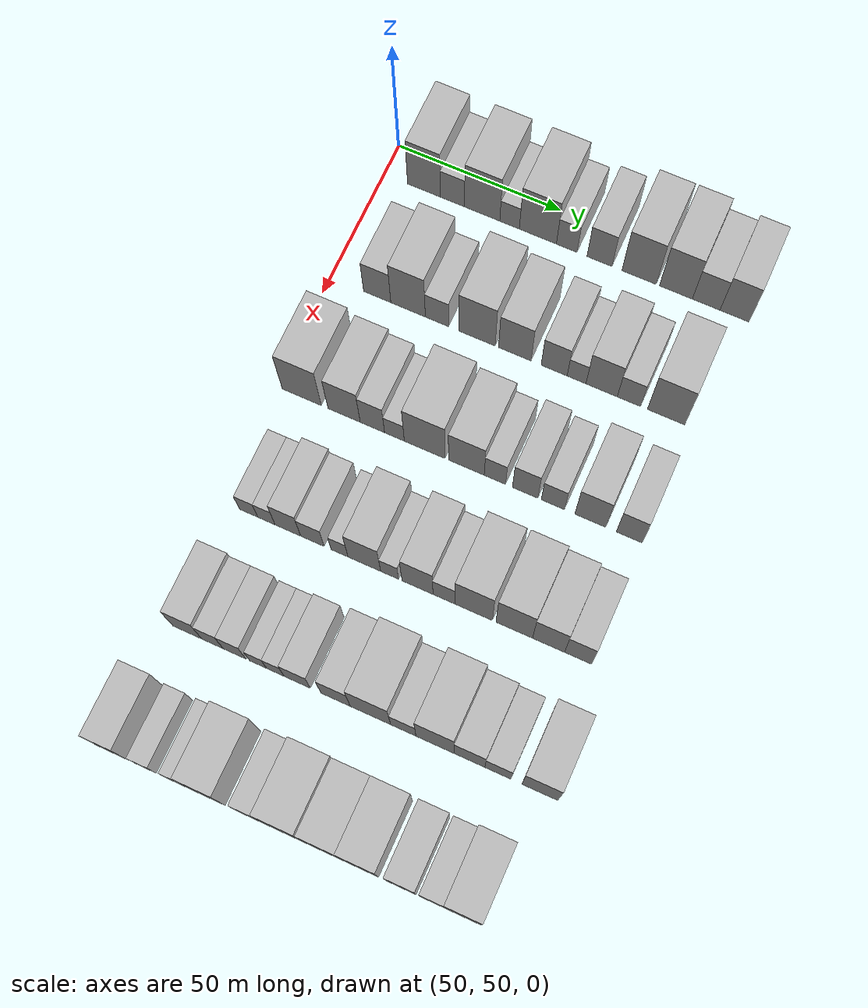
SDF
<sdf version="1.6">
 <world name="default">
  <model name="building_68">
   <static>1</static>
   <pose>50.0000 62.4243 0 0.000000 0.000000 0.000000</pose>
   <link name="link">
    <pose>0 0 12.00 0 0 0</pose>
    <collision name="collision"><geometry><box><size>20.0000 10.1857 24.0000</size></box></geometry></collision>
    <visual name="visual">
     <cast_shadows>0</cast_shadows>
     <geometry><box><size>20.0000 10.1857 24.0000</size></box></geometry>
     <material>
      <script>
       <uri>model://HANNAS_wall/materials/scripts</uri>
       <uri>model://HANNAS_wall/materials/textures</uri>
       <name>vrc/HANNAS_wall</name>
      </script>
     </material>
    </visual>
   </link>
  </model>
  <model name="building_69">
   <static>1</static>
   <pose>50.0000 71.2146 0 0.000000 0.000000 0.000000</pose>
   <link name="link">
    <pose>0 0 7.50 0 0 0</pose>
    <collision name="collision"><geometry><box><size>20.0000 7.3948 15.0000</size></box></geometry></collision>
    <visual name="visual">
     <cast_shadows>0</cast_shadows>
     <geometry><box><size>20.0000 7.3948 15.0000</size></box></geometry>
     <material>
      <script>
       <uri>model://HANNAS_wall/materials/scripts</uri>
       <uri>model://HANNAS_wall/materials/textures</uri>
       <name>vrc/HANNAS_wall</name>
      </script>
     </material>
    </visual>
   </link>
  </model>
  <model name="building_70">
   <static>1</static>
   <pose>50.0000 80.3502 0 0.000000 0.000000 0.000000</pose>
   <link name="link">
    <pose>0 0 12.00 0 0 0</pose>
    <collision name="collision"><geometry><box><size>20.0000 10.8765 24.0000</size></box></geometry></collision>
    <visual name="visual">
     <cast_shadows>0</cast_shadows>
     <geometry><box><size>20.0000 10.8765 24.0000</size></box></geometry>
     <material>
      <script>
       <uri>model://HANNAS_wall/materials/scripts</uri>
       <uri>model://HANNAS_wall/materials/textures</uri>
       <name>vrc/HANNAS_wall</name>
      </script>
     </material>
    </visual>
   </link>
  </model>
  <model name="building_71">
   <static>1</static>
   <pose>50.0000 88.7648 0 0.000000 0.000000 0.000000</pose>
   <link name="link">
    <pose>0 0 6.00 0 0 0</pose>
    <collision name="collision"><geometry><box><size>20.0000 5.9526 12.0000</size></box></geometry></collision>
    <visual name="visual">
     <cast_shadows>0</cast_shadows>
     <geometry><box><size>20.0000 5.9526 12.0000</size></box></geometry>
     <material>
      <script>
       <uri>model://HANNAS_wall/materials/scripts</uri>
       <uri>model://HANNAS_wall/materials/textures</uri>
       <name>vrc/HANNAS_wall</name>
      </script>
     </material>
    </visual>
   </link>
  </model>
  <model name="building_72">
   <static>1</static>
   <pose>50.0000 97.3793 0 0.000000 0.000000 0.000000</pose>
   <link name="link">
    <pose>0 0 12.00 0 0 0</pose>
    <collision name="collision"><geometry><box><size>20.0000 11.2766 24.0000</size></box></geometry></collision>
    <visual name="visual">
     <cast_shadows>0</cast_shadows>
     <geometry><box><size>20.0000 11.2766 24.0000</size></box></geometry>
     <material>
      <script>
       <uri>model://HANNAS_wall/materials/scripts</uri>
       <uri>model://HANNAS_wall/materials/textures</uri>
       <name>vrc/HANNAS_wall</name>
      </script>
     </material>
    </visual>
   </link>
  </model>
  <model name="building_73">
   <static>1</static>
   <pose>50.0000 106.1438 0 0.000000 0.000000 0.000000</pose>
   <link name="link">
    <pose>0 0 7.50 0 0 0</pose>
    <collision name="collision"><geometry><box><size>20.0000 6.2524 15.0000</size></box></geometry></collision>
    <visual name="visual">
     <cast_shadows>0</cast_shadows>
     <geometry><box><size>20.0000 6.2524 15.0000</size></box></geometry>
     <material>
      <script>
       <uri>model://HANNAS_wall/materials/scripts</uri>
       <uri>model://HANNAS_wall/materials/textures</uri>
       <name>vrc/HANNAS_wall</name>
      </script>
     </material>
    </visual>
   </link>
  </model>
  <model name="building_74">
   <static>1</static>
   <pose>50.0000 116.0277 0 0.000000 0.000000 0.000000</pose>
   <link name="link">
    <pose>0 0 9.00 0 0 0</pose>
    <collision name="collision"><geometry><box><size>20.0000 7.5154 18.0000</size></box></geometry></collision>
    <visual name="visual">
     <cast_shadows>0</cast_shadows>
     <geometry><box><size>20.0000 7.5154 18.0000</size></box></geometry>
     <material>
      <script>
       <uri>model://HANNAS_wall/materials/scripts</uri>
       <uri>model://HANNAS_wall/materials/textures</uri>
       <name>vrc/HANNAS_wall</name>
      </script>
     </material>
    </visual>
   </link>
  </model>
  <model name="building_75">
   <static>1</static>
   <pose>50.0000 127.8854 0 0.000000 0.000000 0.000000</pose>
   <link name="link">
    <pose>0 0 12.00 0 0 0</pose>
    <collision name="collision"><geometry><box><size>20.0000 10.2000 24.0000</size></box></geometry></collision>
    <visual name="visual">
     <cast_shadows>0</cast_shadows>
     <geometry><box><size>20.0000 10.2000 24.0000</size></box></geometry>
     <material>
      <script>
       <uri>model://HANNAS_wall/materials/scripts</uri>
       <uri>model://HANNAS_wall/materials/textures</uri>
       <name>vrc/HANNAS_wall</name>
      </script>
     </material>
    </visual>
   </link>
  </model>
  <model name="building_76">
   <static>1</static>
   <pose>50.0000 138.8652 0 0.000000 0.000000 0.000000</pose>
   <link name="link">
    <pose>0 0 12.00 0 0 0</pose>
    <collision name="collision"><geometry><box><size>20.0000 9.7596 24.0000</size></box></geometry></collision>
    <visual name="visual">
     <cast_shadows>0</cast_shadows>
     <geometry><box><size>20.0000 9.7596 24.0000</size></box></geometry>
     <material>
      <script>
       <uri>model://HANNAS_wall/materials/scripts</uri>
       <uri>model://HANNAS_wall/materials/textures</uri>
       <name>vrc/HANNAS_wall</name>
      </script>
     </material>
    </visual>
   </link>
  </model>
  <model name="building_77">
   <static>1</static>
   <pose>50.0000 147.8287 0 0.000000 0.000000 0.000000</pose>
   <link name="link">
    <pose>0 0 9.00 0 0 0</pose>
    <collision name="collision"><geometry><box><size>20.0000 8.1674 18.0000</size></box></geometry></collision>
    <visual name="visual">
     <cast_shadows>0</cast_shadows>
     <geometry><box><size>20.0000 8.1674 18.0000</size></box></geometry>
     <material>
      <script>
       <uri>model://HANNAS_wall/materials/scripts</uri>
       <uri>model://HANNAS_wall/materials/textures</uri>
       <name>vrc/HANNAS_wall</name>
      </script>
     </material>
    </visual>
   </link>
  </model>
  <model name="building_78">
   <static>1</static>
   <pose>50.0000 156.1607 0 0.000000 0.000000 0.000000</pose>
   <link name="link">
    <pose>0 0 10.50 0 0 0</pose>
    <collision name="collision"><geometry><box><size>20.0000 8.4967 21.0000</size></box></geometry></collision>
    <visual name="visual">
     <cast_shadows>0</cast_shadows>
     <geometry><box><size>20.0000 8.4967 21.0000</size></box></geometry>
     <material>
      <script>
       <uri>model://HANNAS_wall/materials/scripts</uri>
       <uri>model://HANNAS_wall/materials/textures</uri>
       <name>vrc/HANNAS_wall</name>
      </script>
     </material>
    </visual>
   </link>
  </model>
  <model name="building_197">
   <static>1</static>
   <pose>85.0000 64.2257 0 0.000000 0.000000 0.000000</pose>
   <link name="link">
    <pose>0 0 9.00 0 0 0</pose>
    <collision name="collision"><geometry><box><size>20.0000 8.2749 18.0000</size></box></geometry></collision>
    <visual name="visual">
     <cast_shadows>0</cast_shadows>
     <geometry><box><size>20.0000 8.2749 18.0000</size></box></geometry>
     <material>
      <script>
       <uri>model://HANNAS_wall/materials/scripts</uri>
       <uri>model://HANNAS_wall/materials/textures</uri>
       <name>vrc/HANNAS_wall</name>
      </script>
     </material>
    </visual>
   </link>
  </model>
  <model name="building_198">
   <static>1</static>
   <pose>85.0000 73.5810 0 0.000000 0.000000 0.000000</pose>
   <link name="link">
    <pose>0 0 12.00 0 0 0</pose>
    <collision name="collision"><geometry><box><size>20.0000 10.4357 24.0000</size></box></geometry></collision>
    <visual name="visual">
     <cast_shadows>0</cast_shadows>
     <geometry><box><size>20.0000 10.4357 24.0000</size></box></geometry>
     <material>
      <script>
       <uri>model://HANNAS_wall/materials/scripts</uri>
       <uri>model://HANNAS_wall/materials/textures</uri>
       <name>vrc/HANNAS_wall</name>
      </script>
     </material>
    </visual>
   </link>
  </model>
  <model name="building_199">
   <static>1</static>
   <pose>85.0000 82.2928 0 0.000000 0.000000 0.000000</pose>
   <link name="link">
    <pose>0 0 7.50 0 0 0</pose>
    <collision name="collision"><geometry><box><size>20.0000 6.9880 15.0000</size></box></geometry></collision>
    <visual name="visual">
     <cast_shadows>0</cast_shadows>
     <geometry><box><size>20.0000 6.9880 15.0000</size></box></geometry>
     <material>
      <script>
       <uri>model://HANNAS_wall/materials/scripts</uri>
       <uri>model://HANNAS_wall/materials/textures</uri>
       <name>vrc/HANNAS_wall</name>
      </script>
     </material>
    </visual>
   </link>
  </model>
  <model name="building_200">
   <static>1</static>
   <pose>85.0000 94.2583 0 0.000000 0.000000 0.000000</pose>
   <link name="link">
    <pose>0 0 12.00 0 0 0</pose>
    <collision name="collision"><geometry><box><size>20.0000 10.9429 24.0000</size></box></geometry></collision>
    <visual name="visual">
     <cast_shadows>0</cast_shadows>
     <geometry><box><size>20.0000 10.9429 24.0000</size></box></geometry>
     <material>
      <script>
       <uri>model://HANNAS_wall/materials/scripts</uri>
       <uri>model://HANNAS_wall/materials/textures</uri>
       <name>vrc/HANNAS_wall</name>
      </script>
     </material>
    </visual>
   </link>
  </model>
  <model name="building_201">
   <static>1</static>
   <pose>85.0000 105.5626 0 0.000000 0.000000 0.000000</pose>
   <link name="link">
    <pose>0 0 10.50 0 0 0</pose>
    <collision name="collision"><geometry><box><size>20.0000 9.6658 21.0000</size></box></geometry></collision>
    <visual name="visual">
     <cast_shadows>0</cast_shadows>
     <geometry><box><size>20.0000 9.6658 21.0000</size></box></geometry>
     <material>
      <script>
       <uri>model://HANNAS_wall/materials/scripts</uri>
       <uri>model://HANNAS_wall/materials/textures</uri>
       <name>vrc/HANNAS_wall</name>
      </script>
     </material>
    </visual>
   </link>
  </model>
  <model name="building_202">
   <static>1</static>
   <pose>85.0000 117.2221 0 0.000000 0.000000 0.000000</pose>
   <link name="link">
    <pose>0 0 9.00 0 0 0</pose>
    <collision name="collision"><geometry><box><size>20.0000 7.6530 18.0000</size></box></geometry></collision>
    <visual name="visual">
     <cast_shadows>0</cast_shadows>
     <geometry><box><size>20.0000 7.6530 18.0000</size></box></geometry>
     <material>
      <script>
       <uri>model://HANNAS_wall/materials/scripts</uri>
       <uri>model://HANNAS_wall/materials/textures</uri>
       <name>vrc/HANNAS_wall</name>
      </script>
     </material>
    </visual>
   </link>
  </model>
  <model name="building_203">
   <static>1</static>
   <pose>85.0000 123.8144 0 0.000000 0.000000 0.000000</pose>
   <link name="link">
    <pose>0 0 6.00 0 0 0</pose>
    <collision name="collision"><geometry><box><size>20.0000 5.5315 12.0000</size></box></geometry></collision>
    <visual name="visual">
     <cast_shadows>0</cast_shadows>
     <geometry><box><size>20.0000 5.5315 12.0000</size></box></geometry>
     <material>
      <script>
       <uri>model://HANNAS_wall/materials/scripts</uri>
       <uri>model://HANNAS_wall/materials/textures</uri>
       <name>vrc/HANNAS_wall</name>
      </script>
     </material>
    </visual>
   </link>
  </model>
  <model name="building_204">
   <static>1</static>
   <pose>85.0000 131.1586 0 0.000000 0.000000 0.000000</pose>
   <link name="link">
    <pose>0 0 10.50 0 0 0</pose>
    <collision name="collision"><geometry><box><size>20.0000 9.1569 21.0000</size></box></geometry></collision>
    <visual name="visual">
     <cast_shadows>0</cast_shadows>
     <geometry><box><size>20.0000 9.1569 21.0000</size></box></geometry>
     <material>
      <script>
       <uri>model://HANNAS_wall/materials/scripts</uri>
       <uri>model://HANNAS_wall/materials/textures</uri>
       <name>vrc/HANNAS_wall</name>
      </script>
     </material>
    </visual>
   </link>
  </model>
  <model name="building_205">
   <static>1</static>
   <pose>85.0000 139.1313 0 0.000000 0.000000 0.000000</pose>
   <link name="link">
    <pose>0 0 7.50 0 0 0</pose>
    <collision name="collision"><geometry><box><size>20.0000 6.7886 15.0000</size></box></geometry></collision>
    <visual name="visual">
     <cast_shadows>0</cast_shadows>
     <geometry><box><size>20.0000 6.7886 15.0000</size></box></geometry>
     <material>
      <script>
       <uri>model://HANNAS_wall/materials/scripts</uri>
       <uri>model://HANNAS_wall/materials/textures</uri>
       <name>vrc/HANNAS_wall</name>
      </script>
     </material>
    </visual>
   </link>
  </model>
  <model name="building_206">
   <static>1</static>
   <pose>85.0000 149.9293 0 0.000000 0.000000 0.000000</pose>
   <link name="link">
    <pose>0 0 12.00 0 0 0</pose>
    <collision name="collision"><geometry><box><size>20.0000 10.8074 24.0000</size></box></geometry></collision>
    <visual name="visual">
     <cast_shadows>0</cast_shadows>
     <geometry><box><size>20.0000 10.8074 24.0000</size></box></geometry>
     <material>
      <script>
       <uri>model://HANNAS_wall/materials/scripts</uri>
       <uri>model://HANNAS_wall/materials/textures</uri>
       <name>vrc/HANNAS_wall</name>
      </script>
     </material>
    </visual>
   </link>
  </model>
  <model name="building_322">
   <static>1</static>
   <pose>120.0000 58.0895 0 0.000000 0.000000 0.000000</pose>
   <link name="link">
    <pose>0 0 12.00 0 0 0</pose>
    <collision name="collision"><geometry><box><size>20.0000 11.6939 24.0000</size></box></geometry></collision>
    <visual name="visual">
     <cast_shadows>0</cast_shadows>
     <geometry><box><size>20.0000 11.6939 24.0000</size></box></geometry>
     <material>
      <script>
       <uri>model://HANNAS_wall/materials/scripts</uri>
       <uri>model://HANNAS_wall/materials/textures</uri>
       <name>vrc/HANNAS_wall</name>
      </script>
     </material>
    </visual>
   </link>
  </model>
  <model name="building_323">
   <static>1</static>
   <pose>120.0000 70.7302 0 0.000000 0.000000 0.000000</pose>
   <link name="link">
    <pose>0 0 10.50 0 0 0</pose>
    <collision name="collision"><geometry><box><size>20.0000 9.5875 21.0000</size></box></geometry></collision>
    <visual name="visual">
     <cast_shadows>0</cast_shadows>
     <geometry><box><size>20.0000 9.5875 21.0000</size></box></geometry>
     <material>
      <script>
       <uri>model://HANNAS_wall/materials/scripts</uri>
       <uri>model://HANNAS_wall/materials/textures</uri>
       <name>vrc/HANNAS_wall</name>
      </script>
     </material>
    </visual>
   </link>
  </model>
  <model name="building_324">
   <static>1</static>
   <pose>120.0000 79.1300 0 0.000000 0.000000 0.000000</pose>
   <link name="link">
    <pose>0 0 9.00 0 0 0</pose>
    <collision name="collision"><geometry><box><size>20.0000 7.2120 18.0000</size></box></geometry></collision>
    <visual name="visual">
     <cast_shadows>0</cast_shadows>
     <geometry><box><size>20.0000 7.2120 18.0000</size></box></geometry>
     <material>
      <script>
       <uri>model://HANNAS_wall/materials/scripts</uri>
       <uri>model://HANNAS_wall/materials/textures</uri>
       <name>vrc/HANNAS_wall</name>
      </script>
     </material>
    </visual>
   </link>
  </model>
  <model name="building_325">
   <static>1</static>
   <pose>120.0000 85.6402 0 0.000000 0.000000 0.000000</pose>
   <link name="link">
    <pose>0 0 6.00 0 0 0</pose>
    <collision name="collision"><geometry><box><size>20.0000 5.8085 12.0000</size></box></geometry></collision>
    <visual name="visual">
     <cast_shadows>0</cast_shadows>
     <geometry><box><size>20.0000 5.8085 12.0000</size></box></geometry>
     <material>
      <script>
       <uri>model://HANNAS_wall/materials/scripts</uri>
       <uri>model://HANNAS_wall/materials/textures</uri>
       <name>vrc/HANNAS_wall</name>
      </script>
     </material>
    </visual>
   </link>
  </model>
  <model name="building_326">
   <static>1</static>
   <pose>120.0000 94.5332 0 0.000000 0.000000 0.000000</pose>
   <link name="link">
    <pose>0 0 12.00 0 0 0</pose>
    <collision name="collision"><geometry><box><size>20.0000 11.9775 24.0000</size></box></geometry></collision>
    <visual name="visual">
     <cast_shadows>0</cast_shadows>
     <geometry><box><size>20.0000 11.9775 24.0000</size></box></geometry>
     <material>
      <script>
       <uri>model://HANNAS_wall/materials/scripts</uri>
       <uri>model://HANNAS_wall/materials/textures</uri>
       <name>vrc/HANNAS_wall</name>
      </script>
     </material>
    </visual>
   </link>
  </model>
  <model name="building_327">
   <static>1</static>
   <pose>120.0000 106.7192 0 0.000000 0.000000 0.000000</pose>
   <link name="link">
    <pose>0 0 10.50 0 0 0</pose>
    <collision name="collision"><geometry><box><size>20.0000 10.3947 21.0000</size></box></geometry></collision>
    <visual name="visual">
     <cast_shadows>0</cast_shadows>
     <geometry><box><size>20.0000 10.3947 21.0000</size></box></geometry>
     <material>
      <script>
       <uri>model://HANNAS_wall/materials/scripts</uri>
       <uri>model://HANNAS_wall/materials/textures</uri>
       <name>vrc/HANNAS_wall</name>
      </script>
     </material>
    </visual>
   </link>
  </model>
  <model name="building_328">
   <static>1</static>
   <pose>120.0000 115.0086 0 0.000000 0.000000 0.000000</pose>
   <link name="link">
    <pose>0 0 7.50 0 0 0</pose>
    <collision name="collision"><geometry><box><size>20.0000 6.1840 15.0000</size></box></geometry></collision>
    <visual name="visual">
     <cast_shadows>0</cast_shadows>
     <geometry><box><size>20.0000 6.1840 15.0000</size></box></geometry>
     <material>
      <script>
       <uri>model://HANNAS_wall/materials/scripts</uri>
       <uri>model://HANNAS_wall/materials/textures</uri>
       <name>vrc/HANNAS_wall</name>
      </script>
     </material>
    </visual>
   </link>
  </model>
  <model name="building_329">
   <static>1</static>
   <pose>120.0000 123.7527 0 0.000000 0.000000 0.000000</pose>
   <link name="link">
    <pose>0 0 9.00 0 0 0</pose>
    <collision name="collision"><geometry><box><size>20.0000 7.3042 18.0000</size></box></geometry></collision>
    <visual name="visual">
     <cast_shadows>0</cast_shadows>
     <geometry><box><size>20.0000 7.3042 18.0000</size></box></geometry>
     <material>
      <script>
       <uri>model://HANNAS_wall/materials/scripts</uri>
       <uri>model://HANNAS_wall/materials/textures</uri>
       <name>vrc/HANNAS_wall</name>
      </script>
     </material>
    </visual>
   </link>
  </model>
  <model name="building_330">
   <static>1</static>
   <pose>120.0000 131.7267 0 0.000000 0.000000 0.000000</pose>
   <link name="link">
    <pose>0 0 7.50 0 0 0</pose>
    <collision name="collision"><geometry><box><size>20.0000 6.6437 15.0000</size></box></geometry></collision>
    <visual name="visual">
     <cast_shadows>0</cast_shadows>
     <geometry><box><size>20.0000 6.6437 15.0000</size></box></geometry>
     <material>
      <script>
       <uri>model://HANNAS_wall/materials/scripts</uri>
       <uri>model://HANNAS_wall/materials/textures</uri>
       <name>vrc/HANNAS_wall</name>
      </script>
     </material>
    </visual>
   </link>
  </model>
  <model name="building_331">
   <static>1</static>
   <pose>120.0000 142.4500 0 0.000000 0.000000 0.000000</pose>
   <link name="link">
    <pose>0 0 10.50 0 0 0</pose>
    <collision name="collision"><geometry><box><size>20.0000 8.8029 21.0000</size></box></geometry></collision>
    <visual name="visual">
     <cast_shadows>0</cast_shadows>
     <geometry><box><size>20.0000 8.8029 21.0000</size></box></geometry>
     <material>
      <script>
       <uri>model://HANNAS_wall/materials/scripts</uri>
       <uri>model://HANNAS_wall/materials/textures</uri>
       <name>vrc/HANNAS_wall</name>
      </script>
     </material>
    </visual>
   </link>
  </model>
  <model name="building_332">
   <static>1</static>
   <pose>120.0000 153.5160 0 0.000000 0.000000 0.000000</pose>
   <link name="link">
    <pose>0 0 9.00 0 0 0</pose>
    <collision name="collision"><geometry><box><size>20.0000 7.3291 18.0000</size></box></geometry></collision>
    <visual name="visual">
     <cast_shadows>0</cast_shadows>
     <geometry><box><size>20.0000 7.3291 18.0000</size></box></geometry>
     <material>
      <script>
       <uri>model://HANNAS_wall/materials/scripts</uri>
       <uri>model://HANNAS_wall/materials/textures</uri>
       <name>vrc/HANNAS_wall</name>
      </script>
     </material>
    </visual>
   </link>
  </model>
  <model name="building_445">
   <static>1</static>
   <pose>155.0000 59.4822 0 0.000000 0.000000 0.000000</pose>
   <link name="link">
    <pose>0 0 6.00 0 0 0</pose>
    <collision name="collision"><geometry><box><size>20.0000 5.4092 12.0000</size></box></geometry></collision>
    <visual name="visual">
     <cast_shadows>0</cast_shadows>
     <geometry><box><size>20.0000 5.4092 12.0000</size></box></geometry>
     <material>
      <script>
       <uri>model://HANNAS_wall/materials/scripts</uri>
       <uri>model://HANNAS_wall/materials/textures</uri>
       <name>vrc/HANNAS_wall</name>
      </script>
     </material>
    </visual>
   </link>
  </model>
  <model name="building_446">
   <static>1</static>
   <pose>155.0000 64.7358 0 0.000000 0.000000 0.000000</pose>
   <link name="link">
    <pose>0 0 6.00 0 0 0</pose>
    <collision name="collision"><geometry><box><size>20.0000 5.0980 12.0000</size></box></geometry></collision>
    <visual name="visual">
     <cast_shadows>0</cast_shadows>
     <geometry><box><size>20.0000 5.0980 12.0000</size></box></geometry>
     <material>
      <script>
       <uri>model://HANNAS_wall/materials/scripts</uri>
       <uri>model://HANNAS_wall/materials/textures</uri>
       <name>vrc/HANNAS_wall</name>
      </script>
     </material>
    </visual>
   </link>
  </model>
  <model name="building_447">
   <static>1</static>
   <pose>155.0000 71.0237 0 0.000000 0.000000 0.000000</pose>
   <link name="link">
    <pose>0 0 9.00 0 0 0</pose>
    <collision name="collision"><geometry><box><size>20.0000 7.4777 18.0000</size></box></geometry></collision>
    <visual name="visual">
     <cast_shadows>0</cast_shadows>
     <geometry><box><size>20.0000 7.4777 18.0000</size></box></geometry>
     <material>
      <script>
       <uri>model://HANNAS_wall/materials/scripts</uri>
       <uri>model://HANNAS_wall/materials/textures</uri>
       <name>vrc/HANNAS_wall</name>
      </script>
     </material>
    </visual>
   </link>
  </model>
  <model name="building_448">
   <static>1</static>
   <pose>155.0000 78.1635 0 0.000000 0.000000 0.000000</pose>
   <link name="link">
    <pose>0 0 7.50 0 0 0</pose>
    <collision name="collision"><geometry><box><size>20.0000 6.8018 15.0000</size></box></geometry></collision>
    <visual name="visual">
     <cast_shadows>0</cast_shadows>
     <geometry><box><size>20.0000 6.8018 15.0000</size></box></geometry>
     <material>
      <script>
       <uri>model://HANNAS_wall/materials/scripts</uri>
       <uri>model://HANNAS_wall/materials/textures</uri>
       <name>vrc/HANNAS_wall</name>
      </script>
     </material>
    </visual>
   </link>
  </model>
  <model name="building_449">
   <static>1</static>
   <pose>155.0000 86.0240 0 0.000000 0.000000 0.000000</pose>
   <link name="link">
    <pose>0 0 6.00 0 0 0</pose>
    <collision name="collision"><geometry><box><size>20.0000 4.9194 12.0000</size></box></geometry></collision>
    <visual name="visual">
     <cast_shadows>0</cast_shadows>
     <geometry><box><size>20.0000 4.9194 12.0000</size></box></geometry>
     <material>
      <script>
       <uri>model://HANNAS_wall/materials/scripts</uri>
       <uri>model://HANNAS_wall/materials/textures</uri>
       <name>vrc/HANNAS_wall</name>
      </script>
     </material>
    </visual>
   </link>
  </model>
  <model name="building_450">
   <static>1</static>
   <pose>155.0000 93.1914 0 0.000000 0.000000 0.000000</pose>
   <link name="link">
    <pose>0 0 10.50 0 0 0</pose>
    <collision name="collision"><geometry><box><size>20.0000 9.4154 21.0000</size></box></geometry></collision>
    <visual name="visual">
     <cast_shadows>0</cast_shadows>
     <geometry><box><size>20.0000 9.4154 21.0000</size></box></geometry>
     <material>
      <script>
       <uri>model://HANNAS_wall/materials/scripts</uri>
       <uri>model://HANNAS_wall/materials/textures</uri>
       <name>vrc/HANNAS_wall</name>
      </script>
     </material>
    </visual>
   </link>
  </model>
  <model name="building_451">
   <static>1</static>
   <pose>155.0000 100.4544 0 0.000000 0.000000 0.000000</pose>
   <link name="link">
    <pose>0 0 6.00 0 0 0</pose>
    <collision name="collision"><geometry><box><size>20.0000 5.1104 12.0000</size></box></geometry></collision>
    <visual name="visual">
     <cast_shadows>0</cast_shadows>
     <geometry><box><size>20.0000 5.1104 12.0000</size></box></geometry>
     <material>
      <script>
       <uri>model://HANNAS_wall/materials/scripts</uri>
       <uri>model://HANNAS_wall/materials/textures</uri>
       <name>vrc/HANNAS_wall</name>
      </script>
     </material>
    </visual>
   </link>
  </model>
  <model name="building_452">
   <static>1</static>
   <pose>155.0000 108.4421 0 0.000000 0.000000 0.000000</pose>
   <link name="link">
    <pose>0 0 10.50 0 0 0</pose>
    <collision name="collision"><geometry><box><size>20.0000 8.8650 21.0000</size></box></geometry></collision>
    <visual name="visual">
     <cast_shadows>0</cast_shadows>
     <geometry><box><size>20.0000 8.8650 21.0000</size></box></geometry>
     <material>
      <script>
       <uri>model://HANNAS_wall/materials/scripts</uri>
       <uri>model://HANNAS_wall/materials/textures</uri>
       <name>vrc/HANNAS_wall</name>
      </script>
     </material>
    </visual>
   </link>
  </model>
  <model name="building_453">
   <static>1</static>
   <pose>155.0000 115.9758 0 0.000000 0.000000 0.000000</pose>
   <link name="link">
    <pose>0 0 7.50 0 0 0</pose>
    <collision name="collision"><geometry><box><size>20.0000 6.2022 15.0000</size></box></geometry></collision>
    <visual name="visual">
     <cast_shadows>0</cast_shadows>
     <geometry><box><size>20.0000 6.2022 15.0000</size></box></geometry>
     <material>
      <script>
       <uri>model://HANNAS_wall/materials/scripts</uri>
       <uri>model://HANNAS_wall/materials/textures</uri>
       <name>vrc/HANNAS_wall</name>
      </script>
     </material>
    </visual>
   </link>
  </model>
  <model name="building_454">
   <static>1</static>
   <pose>155.0000 124.3782 0 0.000000 0.000000 0.000000</pose>
   <link name="link">
    <pose>0 0 12.00 0 0 0</pose>
    <collision name="collision"><geometry><box><size>20.0000 10.6027 24.0000</size></box></geometry></collision>
    <visual name="visual">
     <cast_shadows>0</cast_shadows>
     <geometry><box><size>20.0000 10.6027 24.0000</size></box></geometry>
     <material>
      <script>
       <uri>model://HANNAS_wall/materials/scripts</uri>
       <uri>model://HANNAS_wall/materials/textures</uri>
       <name>vrc/HANNAS_wall</name>
      </script>
     </material>
    </visual>
   </link>
  </model>
  <model name="building_455">
   <static>1</static>
   <pose>155.0000 135.8041 0 0.000000 0.000000 0.000000</pose>
   <link name="link">
    <pose>0 0 12.00 0 0 0</pose>
    <collision name="collision"><geometry><box><size>20.0000 10.2490 24.0000</size></box></geometry></collision>
    <visual name="visual">
     <cast_shadows>0</cast_shadows>
     <geometry><box><size>20.0000 10.2490 24.0000</size></box></geometry>
     <material>
      <script>
       <uri>model://HANNAS_wall/materials/scripts</uri>
       <uri>model://HANNAS_wall/materials/textures</uri>
       <name>vrc/HANNAS_wall</name>
      </script>
     </material>
    </visual>
   </link>
  </model>
  <model name="building_456">
   <static>1</static>
   <pose>155.0000 145.4093 0 0.000000 0.000000 0.000000</pose>
   <link name="link">
    <pose>0 0 10.50 0 0 0</pose>
    <collision name="collision"><geometry><box><size>20.0000 8.9616 21.0000</size></box></geometry></collision>
    <visual name="visual">
     <cast_shadows>0</cast_shadows>
     <geometry><box><size>20.0000 8.9616 21.0000</size></box></geometry>
     <material>
      <script>
       <uri>model://HANNAS_wall/materials/scripts</uri>
       <uri>model://HANNAS_wall/materials/textures</uri>
       <name>vrc/HANNAS_wall</name>
      </script>
     </material>
    </visual>
   </link>
  </model>
  <model name="building_457">
   <static>1</static>
   <pose>155.0000 153.6328 0 0.000000 0.000000 0.000000</pose>
   <link name="link">
    <pose>0 0 9.00 0 0 0</pose>
    <collision name="collision"><geometry><box><size>20.0000 7.4854 18.0000</size></box></geometry></collision>
    <visual name="visual">
     <cast_shadows>0</cast_shadows>
     <geometry><box><size>20.0000 7.4854 18.0000</size></box></geometry>
     <material>
      <script>
       <uri>model://HANNAS_wall/materials/scripts</uri>
       <uri>model://HANNAS_wall/materials/textures</uri>
       <name>vrc/HANNAS_wall</name>
      </script>
     </material>
    </visual>
   </link>
  </model>
  <model name="building_575">
   <static>1</static>
   <pose>190.0000 59.3474 0 0.000000 0.000000 0.000000</pose>
   <link name="link">
    <pose>0 0 9.00 0 0 0</pose>
    <collision name="collision"><geometry><box><size>20.0000 8.3815 18.0000</size></box></geometry></collision>
    <visual name="visual">
     <cast_shadows>0</cast_shadows>
     <geometry><box><size>20.0000 8.3815 18.0000</size></box></geometry>
     <material>
      <script>
       <uri>model://HANNAS_wall/materials/scripts</uri>
       <uri>model://HANNAS_wall/materials/textures</uri>
       <name>vrc/HANNAS_wall</name>
      </script>
     </material>
    </visual>
   </link>
  </model>
  <model name="building_576">
   <static>1</static>
   <pose>190.0000 66.6061 0 0.000000 0.000000 0.000000</pose>
   <link name="link">
    <pose>0 0 7.50 0 0 0</pose>
    <collision name="collision"><geometry><box><size>20.0000 6.1360 15.0000</size></box></geometry></collision>
    <visual name="visual">
     <cast_shadows>0</cast_shadows>
     <geometry><box><size>20.0000 6.1360 15.0000</size></box></geometry>
     <material>
      <script>
       <uri>model://HANNAS_wall/materials/scripts</uri>
       <uri>model://HANNAS_wall/materials/textures</uri>
       <name>vrc/HANNAS_wall</name>
      </script>
     </material>
    </visual>
   </link>
  </model>
  <model name="building_577">
   <static>1</static>
   <pose>190.0000 72.9389 0 0.000000 0.000000 0.000000</pose>
   <link name="link">
    <pose>0 0 7.50 0 0 0</pose>
    <collision name="collision"><geometry><box><size>20.0000 6.5294 15.0000</size></box></geometry></collision>
    <visual name="visual">
     <cast_shadows>0</cast_shadows>
     <geometry><box><size>20.0000 6.5294 15.0000</size></box></geometry>
     <material>
      <script>
       <uri>model://HANNAS_wall/materials/scripts</uri>
       <uri>model://HANNAS_wall/materials/textures</uri>
       <name>vrc/HANNAS_wall</name>
      </script>
     </material>
    </visual>
   </link>
  </model>
  <model name="building_578">
   <static>1</static>
   <pose>190.0000 79.6387 0 0.000000 0.000000 0.000000</pose>
   <link name="link">
    <pose>0 0 6.00 0 0 0</pose>
    <collision name="collision"><geometry><box><size>20.0000 4.8702 12.0000</size></box></geometry></collision>
    <visual name="visual">
     <cast_shadows>0</cast_shadows>
     <geometry><box><size>20.0000 4.8702 12.0000</size></box></geometry>
     <material>
      <script>
       <uri>model://HANNAS_wall/materials/scripts</uri>
       <uri>model://HANNAS_wall/materials/textures</uri>
       <name>vrc/HANNAS_wall</name>
      </script>
     </material>
    </visual>
   </link>
  </model>
  <model name="building_579">
   <static>1</static>
   <pose>190.0000 84.5752 0 0.000000 0.000000 0.000000</pose>
   <link name="link">
    <pose>0 0 6.00 0 0 0</pose>
    <collision name="collision"><geometry><box><size>20.0000 5.0028 12.0000</size></box></geometry></collision>
    <visual name="visual">
     <cast_shadows>0</cast_shadows>
     <geometry><box><size>20.0000 5.0028 12.0000</size></box></geometry>
     <material>
      <script>
       <uri>model://HANNAS_wall/materials/scripts</uri>
       <uri>model://HANNAS_wall/materials/textures</uri>
       <name>vrc/HANNAS_wall</name>
      </script>
     </material>
    </visual>
   </link>
  </model>
  <model name="building_580">
   <static>1</static>
   <pose>190.0000 90.7946 0 0.000000 0.000000 0.000000</pose>
   <link name="link">
    <pose>0 0 7.50 0 0 0</pose>
    <collision name="collision"><geometry><box><size>20.0000 7.4359 15.0000</size></box></geometry></collision>
    <visual name="visual">
     <cast_shadows>0</cast_shadows>
     <geometry><box><size>20.0000 7.4359 15.0000</size></box></geometry>
     <material>
      <script>
       <uri>model://HANNAS_wall/materials/scripts</uri>
       <uri>model://HANNAS_wall/materials/textures</uri>
       <name>vrc/HANNAS_wall</name>
      </script>
     </material>
    </visual>
   </link>
  </model>
  <model name="building_581">
   <static>1</static>
   <pose>190.0000 101.6220 0 0.000000 0.000000 0.000000</pose>
   <link name="link">
    <pose>0 0 9.00 0 0 0</pose>
    <collision name="collision"><geometry><box><size>20.0000 8.2191 18.0000</size></box></geometry></collision>
    <visual name="visual">
     <cast_shadows>0</cast_shadows>
     <geometry><box><size>20.0000 8.2191 18.0000</size></box></geometry>
     <material>
      <script>
       <uri>model://HANNAS_wall/materials/scripts</uri>
       <uri>model://HANNAS_wall/materials/textures</uri>
       <name>vrc/HANNAS_wall</name>
      </script>
     </material>
    </visual>
   </link>
  </model>
  <model name="building_582">
   <static>1</static>
   <pose>190.0000 111.3749 0 0.000000 0.000000 0.000000</pose>
   <link name="link">
    <pose>0 0 12.00 0 0 0</pose>
    <collision name="collision"><geometry><box><size>20.0000 11.2866 24.0000</size></box></geometry></collision>
    <visual name="visual">
     <cast_shadows>0</cast_shadows>
     <geometry><box><size>20.0000 11.2866 24.0000</size></box></geometry>
     <material>
      <script>
       <uri>model://HANNAS_wall/materials/scripts</uri>
       <uri>model://HANNAS_wall/materials/textures</uri>
       <name>vrc/HANNAS_wall</name>
      </script>
     </material>
    </visual>
   </link>
  </model>
  <model name="building_583">
   <static>1</static>
   <pose>190.0000 120.5320 0 0.000000 0.000000 0.000000</pose>
   <link name="link">
    <pose>0 0 7.50 0 0 0</pose>
    <collision name="collision"><geometry><box><size>20.0000 7.0275 15.0000</size></box></geometry></collision>
    <visual name="visual">
     <cast_shadows>0</cast_shadows>
     <geometry><box><size>20.0000 7.0275 15.0000</size></box></geometry>
     <material>
      <script>
       <uri>model://HANNAS_wall/materials/scripts</uri>
       <uri>model://HANNAS_wall/materials/textures</uri>
       <name>vrc/HANNAS_wall</name>
      </script>
     </material>
    </visual>
   </link>
  </model>
  <model name="building_584">
   <static>1</static>
   <pose>190.0000 129.2785 0 0.000000 0.000000 0.000000</pose>
   <link name="link">
    <pose>0 0 12.00 0 0 0</pose>
    <collision name="collision"><geometry><box><size>20.0000 10.4655 24.0000</size></box></geometry></collision>
    <visual name="visual">
     <cast_shadows>0</cast_shadows>
     <geometry><box><size>20.0000 10.4655 24.0000</size></box></geometry>
     <material>
      <script>
       <uri>model://HANNAS_wall/materials/scripts</uri>
       <uri>model://HANNAS_wall/materials/textures</uri>
       <name>vrc/HANNAS_wall</name>
      </script>
     </material>
    </visual>
   </link>
  </model>
  <model name="building_585">
   <static>1</static>
   <pose>190.0000 138.7582 0 0.000000 0.000000 0.000000</pose>
   <link name="link">
    <pose>0 0 9.00 0 0 0</pose>
    <collision name="collision"><geometry><box><size>20.0000 8.4938 18.0000</size></box></geometry></collision>
    <visual name="visual">
     <cast_shadows>0</cast_shadows>
     <geometry><box><size>20.0000 8.4938 18.0000</size></box></geometry>
     <material>
      <script>
       <uri>model://HANNAS_wall/materials/scripts</uri>
       <uri>model://HANNAS_wall/materials/textures</uri>
       <name>vrc/HANNAS_wall</name>
      </script>
     </material>
    </visual>
   </link>
  </model>
  <model name="building_586">
   <static>1</static>
   <pose>190.0000 146.5656 0 0.000000 0.000000 0.000000</pose>
   <link name="link">
    <pose>0 0 7.50 0 0 0</pose>
    <collision name="collision"><geometry><box><size>20.0000 7.1211 15.0000</size></box></geometry></collision>
    <visual name="visual">
     <cast_shadows>0</cast_shadows>
     <geometry><box><size>20.0000 7.1211 15.0000</size></box></geometry>
     <material>
      <script>
       <uri>model://HANNAS_wall/materials/scripts</uri>
       <uri>model://HANNAS_wall/materials/textures</uri>
       <name>vrc/HANNAS_wall</name>
      </script>
     </material>
    </visual>
   </link>
  </model>
  <model name="building_587">
   <static>1</static>
   <pose>190.0000 157.9977 0 0.000000 0.000000 0.000000</pose>
   <link name="link">
    <pose>0 0 10.50 0 0 0</pose>
    <collision name="collision"><geometry><box><size>20.0000 9.7430 21.0000</size></box></geometry></collision>
    <visual name="visual">
     <cast_shadows>0</cast_shadows>
     <geometry><box><size>20.0000 9.7430 21.0000</size></box></geometry>
     <material>
      <script>
       <uri>model://HANNAS_wall/materials/scripts</uri>
       <uri>model://HANNAS_wall/materials/textures</uri>
       <name>vrc/HANNAS_wall</name>
      </script>
     </material>
    </visual>
   </link>
  </model>
  <model name="building_695">
   <static>1</static>
   <pose>225.0000 56.4177 0 0.000000 0.000000 0.000000</pose>
   <link name="link">
    <pose>0 0 10.50 0 0 0</pose>
    <collision name="collision"><geometry><box><size>20.0000 8.5752 21.0000</size></box></geometry></collision>
    <visual name="visual">
     <cast_shadows>0</cast_shadows>
     <geometry><box><size>20.0000 8.5752 21.0000</size></box></geometry>
     <material>
      <script>
       <uri>model://HANNAS_wall/materials/scripts</uri>
       <uri>model://HANNAS_wall/materials/textures</uri>
       <name>vrc/HANNAS_wall</name>
      </script>
     </material>
    </visual>
   </link>
  </model>
  <model name="building_696">
   <static>1</static>
   <pose>225.0000 65.6237 0 0.000000 0.000000 0.000000</pose>
   <link name="link">
    <pose>0 0 6.00 0 0 0</pose>
    <collision name="collision"><geometry><box><size>20.0000 5.8369 12.0000</size></box></geometry></collision>
    <visual name="visual">
     <cast_shadows>0</cast_shadows>
     <geometry><box><size>20.0000 5.8369 12.0000</size></box></geometry>
     <material>
      <script>
       <uri>model://HANNAS_wall/materials/scripts</uri>
       <uri>model://HANNAS_wall/materials/textures</uri>
       <name>vrc/HANNAS_wall</name>
      </script>
     </material>
    </visual>
   </link>
  </model>
  <model name="building_697">
   <static>1</static>
   <pose>225.0000 74.4793 0 0.000000 0.000000 0.000000</pose>
   <link name="link">
    <pose>0 0 6.00 0 0 0</pose>
    <collision name="collision"><geometry><box><size>20.0000 5.8742 12.0000</size></box></geometry></collision>
    <visual name="visual">
     <cast_shadows>0</cast_shadows>
     <geometry><box><size>20.0000 5.8742 12.0000</size></box></geometry>
     <material>
      <script>
       <uri>model://HANNAS_wall/materials/scripts</uri>
       <uri>model://HANNAS_wall/materials/textures</uri>
       <name>vrc/HANNAS_wall</name>
      </script>
     </material>
    </visual>
   </link>
  </model>
  <model name="building_698">
   <static>1</static>
   <pose>225.0000 82.6417 0 0.000000 0.000000 0.000000</pose>
   <link name="link">
    <pose>0 0 12.00 0 0 0</pose>
    <collision name="collision"><geometry><box><size>20.0000 10.4505 24.0000</size></box></geometry></collision>
    <visual name="visual">
     <cast_shadows>0</cast_shadows>
     <geometry><box><size>20.0000 10.4505 24.0000</size></box></geometry>
     <material>
      <script>
       <uri>model://HANNAS_wall/materials/scripts</uri>
       <uri>model://HANNAS_wall/materials/textures</uri>
       <name>vrc/HANNAS_wall</name>
      </script>
     </material>
    </visual>
   </link>
  </model>
  <model name="building_699">
   <static>1</static>
   <pose>225.0000 94.4542 0 0.000000 0.000000 0.000000</pose>
   <link name="link">
    <pose>0 0 7.50 0 0 0</pose>
    <collision name="collision"><geometry><box><size>20.0000 7.1746 15.0000</size></box></geometry></collision>
    <visual name="visual">
     <cast_shadows>0</cast_shadows>
     <geometry><box><size>20.0000 7.1746 15.0000</size></box></geometry>
     <material>
      <script>
       <uri>model://HANNAS_wall/materials/scripts</uri>
       <uri>model://HANNAS_wall/materials/textures</uri>
       <name>vrc/HANNAS_wall</name>
      </script>
     </material>
    </visual>
   </link>
  </model>
  <model name="building_700">
   <static>1</static>
   <pose>225.0000 103.6499 0 0.000000 0.000000 0.000000</pose>
   <link name="link">
    <pose>0 0 12.00 0 0 0</pose>
    <collision name="collision"><geometry><box><size>20.0000 11.2167 24.0000</size></box></geometry></collision>
    <visual name="visual">
     <cast_shadows>0</cast_shadows>
     <geometry><box><size>20.0000 11.2167 24.0000</size></box></geometry>
     <material>
      <script>
       <uri>model://HANNAS_wall/materials/scripts</uri>
       <uri>model://HANNAS_wall/materials/textures</uri>
       <name>vrc/HANNAS_wall</name>
      </script>
     </material>
    </visual>
   </link>
  </model>
  <model name="building_701">
   <static>1</static>
   <pose>225.0000 114.3861 0 0.000000 0.000000 0.000000</pose>
   <link name="link">
    <pose>0 0 10.50 0 0 0</pose>
    <collision name="collision"><geometry><box><size>20.0000 10.2556 21.0000</size></box></geometry></collision>
    <visual name="visual">
     <cast_shadows>0</cast_shadows>
     <geometry><box><size>20.0000 10.2556 21.0000</size></box></geometry>
     <material>
      <script>
       <uri>model://HANNAS_wall/materials/scripts</uri>
       <uri>model://HANNAS_wall/materials/textures</uri>
       <name>vrc/HANNAS_wall</name>
      </script>
     </material>
    </visual>
   </link>
  </model>
  <model name="building_702">
   <static>1</static>
   <pose>225.0000 124.7441 0 0.000000 0.000000 0.000000</pose>
   <link name="link">
    <pose>0 0 10.50 0 0 0</pose>
    <collision name="collision"><geometry><box><size>20.0000 10.4605 21.0000</size></box></geometry></collision>
    <visual name="visual">
     <cast_shadows>0</cast_shadows>
     <geometry><box><size>20.0000 10.4605 21.0000</size></box></geometry>
     <material>
      <script>
       <uri>model://HANNAS_wall/materials/scripts</uri>
       <uri>model://HANNAS_wall/materials/textures</uri>
       <name>vrc/HANNAS_wall</name>
      </script>
     </material>
    </visual>
   </link>
  </model>
  <model name="building_703">
   <static>1</static>
   <pose>225.0000 136.0287 0 0.000000 0.000000 0.000000</pose>
   <link name="link">
    <pose>0 0 9.00 0 0 0</pose>
    <collision name="collision"><geometry><box><size>20.0000 8.1087 18.0000</size></box></geometry></collision>
    <visual name="visual">
     <cast_shadows>0</cast_shadows>
     <geometry><box><size>20.0000 8.1087 18.0000</size></box></geometry>
     <material>
      <script>
       <uri>model://HANNAS_wall/materials/scripts</uri>
       <uri>model://HANNAS_wall/materials/textures</uri>
       <name>vrc/HANNAS_wall</name>
      </script>
     </material>
    </visual>
   </link>
  </model>
  <model name="building_704">
   <static>1</static>
   <pose>225.0000 144.3384 0 0.000000 0.000000 0.000000</pose>
   <link name="link">
    <pose>0 0 7.50 0 0 0</pose>
    <collision name="collision"><geometry><box><size>20.0000 6.5108 15.0000</size></box></geometry></collision>
    <visual name="visual">
     <cast_shadows>0</cast_shadows>
     <geometry><box><size>20.0000 6.5108 15.0000</size></box></geometry>
     <material>
      <script>
       <uri>model://HANNAS_wall/materials/scripts</uri>
       <uri>model://HANNAS_wall/materials/textures</uri>
       <name>vrc/HANNAS_wall</name>
      </script>
     </material>
    </visual>
   </link>
  </model>
  <model name="building_705">
   <static>1</static>
   <pose>225.0000 152.5349 0 0.000000 0.000000 0.000000</pose>
   <link name="link">
    <pose>0 0 12.00 0 0 0</pose>
    <collision name="collision"><geometry><box><size>20.0000 9.8822 24.0000</size></box></geometry></collision>
    <visual name="visual">
     <cast_shadows>0</cast_shadows>
     <geometry><box><size>20.0000 9.8822 24.0000</size></box></geometry>
     <material>
      <script>
       <uri>model://HANNAS_wall/materials/scripts</uri>
       <uri>model://HANNAS_wall/materials/textures</uri>
       <name>vrc/HANNAS_wall</name>
      </script>
     </material>
    </visual>
   </link>
  </model>
 </world>
</sdf>
